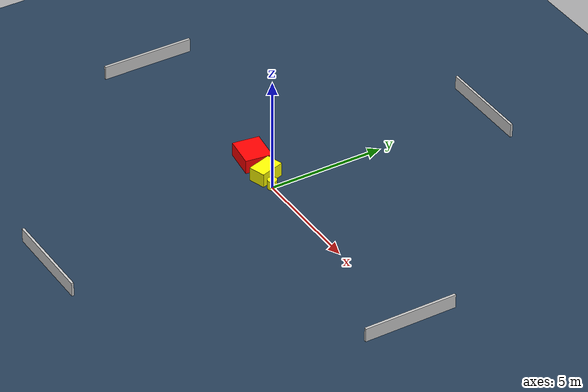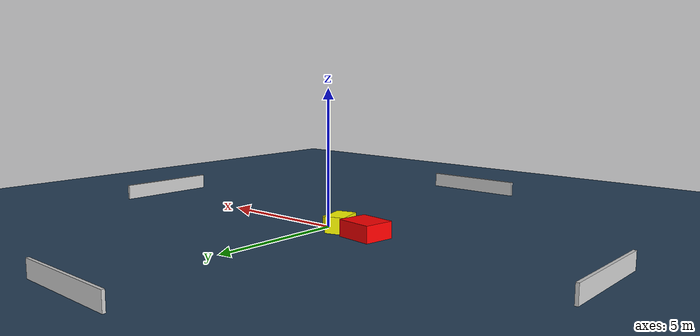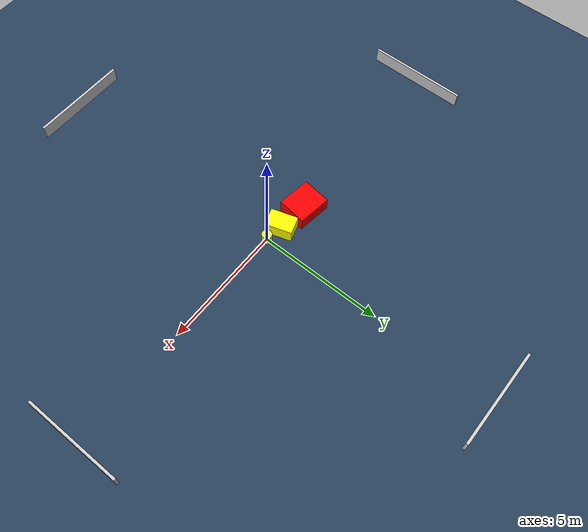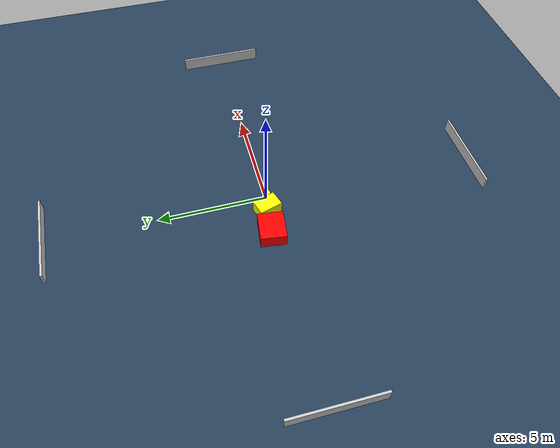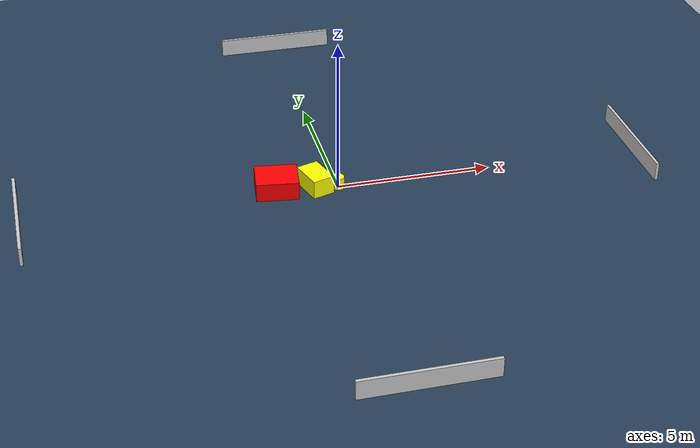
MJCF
<?xml version="1.0" ?>
<mujoco model="generated_environment">
  <option timestep="0.01" integrator="RK4" cone="elliptic"/>
  <default>
    <geom density="1"/>
  </default>
  <asset>
    <texture builtin="gradient" height="3072" name="skybox" rgb1="0.3 0.5 0.7" rgb2="0 0 0" type="skybox" width="512"/>
    <texture builtin="checker" height="300" name="groundplane" rgb1="0.2 0.3 0.4" rgb2="0.1 0.2 0.3" type="2d" width="300"/>
    <material name="groundplane" reflectance="0.2" texrepeat="5 5" texture="groundplane"/>
  </asset>
  <worldbody>
    <light dir="0 0 -1" directional="true" pos="0 0 1.5"/>
    <geom condim="3" friction="0.5 0.005 0.001" material="groundplane" name="floor" pos="0 0 0" size="0 0 0.05" type="plane"/>
    <body name="walls">
      <geom name="wall_1" condim="4" pos="-10.0 0.0 0.3" rgba="0.800000011920929 0.800000011920929 0.800000011920929 1.0" size="0.05 2.0 0.3" type="box"/>
      <geom name="wall_2" condim="4" pos="10.0 0.0 0.3" rgba="0.800000011920929 0.800000011920929 0.800000011920929 1.0" size="0.05 2.0 0.3" type="box"/>
      <geom name="wall_3" condim="4" pos="0.0 -10.0 0.3" rgba="0.800000011920929 0.800000011920929 0.800000011920929 1.0" size="2.0 0.05 0.3" type="box"/>
      <geom name="wall_4" condim="4" pos="0.0 10.0 0.3" rgba="0.800000011920929 0.800000011920929 0.800000011920929 1.0" size="2.0 0.05 0.3" type="box"/>
    </body>
    <body name="robot">
      <joint name="joint_x" type="slide" pos="0 0 0" axis="1 0 0"/>
      <joint name="joint_y" type="slide" pos="0 0 0" axis="0 1 0"/>
      <geom name="robot" type="cylinder" pos="0.0 0.0 0.2" size="0.2 0.2 0.0" mass="5.0" friction="1.0 0.005 0.0001" condim="4" rgba="1.0 1.0 0.0 1.0"/>
    </body>
    <body name="obstacle_1_movable">
      <geom name="obstacle_1_movable" condim="4" pos="-0.7077313480898031 0.12501441215518705 0.3" euler="0 0 107.34549625914059" friction="0.0 0.005 0.001" rgba="1.0 1.0 0.0 1.0" size="0.54034507231948 0.3659150681172822 0.3" type="box" mass="0.1"/>
      <joint type="free"/>
    </body>
    <body name="obstacle_2_static">
      <geom name="obstacle_2_static" condim="4" pos="-1.941060683879123 0.2446401723167386 0.3" euler="0 0 262.6121499095027" friction="0.0 0.005 0.001" rgba="1.0 0.0 0.0 1.0" size="0.5787531205311405 0.6784403861725451 0.3" type="box"/>
    </body>
  </worldbody>
  <actuator>
    <motor name="actuator_x" joint="joint_x" gear="1" ctrlrange="-1 1"/>
    <motor name="actuator_y" joint="joint_y" gear="1" ctrlrange="-1 1"/>
  </actuator>
</mujoco>
